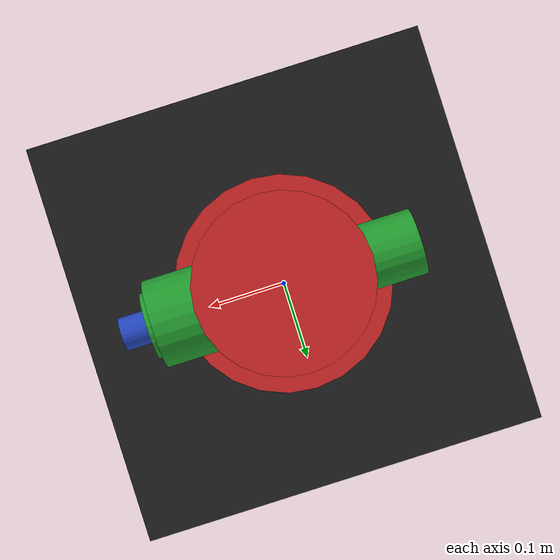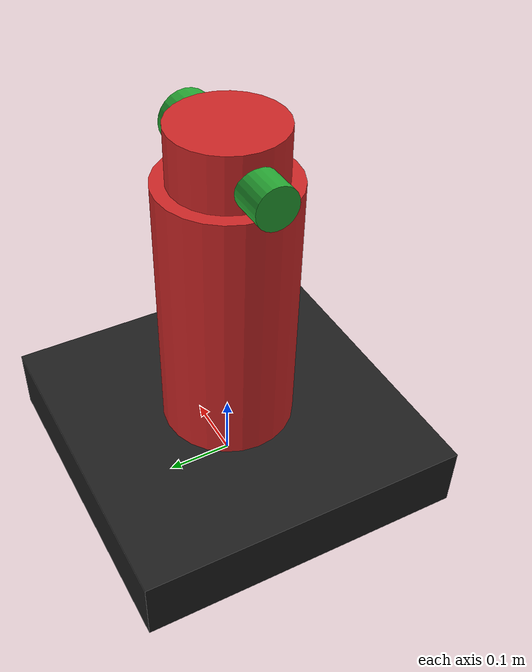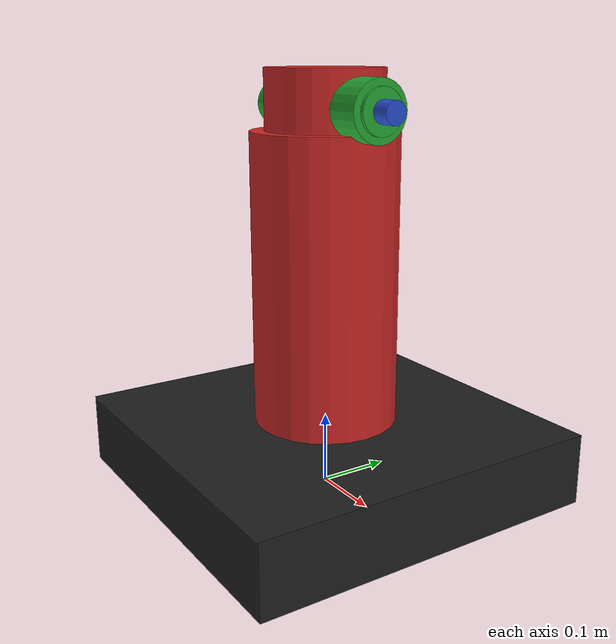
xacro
<?xml version='1.0'?>
<robot name="robot_ipsa" xmlns:xacro="http://www.ros.org/wiki/xacro">
  <xacro:include filename="$(find in426_desc)/xacro/material.xacro"/>
  <xacro:include filename="$(find in426_desc)/xacro/Robot_2/robot_2.gazebo"/>

  <xacro:property name="base_width" value="0.5"/>
  <xacro:property name="base_height" value="0.1"/>

  <xacro:property name="arm1_radius" value="0.1"/>
  <xacro:property name="arm1_length" value="0.4"/>

  <xacro:property name="arm2_radius" value="0.08"/>
  <xacro:property name="arm2_length" value="0.4"/>

  <xacro:property name="arm3_sub_radius" value="0.04"/>
  <xacro:property name="arm3_sub_length" value="0.05"/>

  <xacro:property name="arm3_radius" value="0.03"/>
  <xacro:property name="arm3_length" value="0.25"/>

  <xacro:property name="link_4_length" value="0.025"/>
  <xacro:property name="link_4_radius" value="0.015"/>

  <xacro:include filename="$(find in426_desc)/xacro/Robot_2/robot_2_ros2_control.xacro"/>

  <xacro:macro name="box_inertial" params="mass width height depth ox oy oz">
    <inertial>
      <mass value="${mass}"/>
      <origin xyz="${ox} ${oy} ${oz}"/>
      <inertia ixx="${mass / 12 * (height*height + depth*depth)}"
        iyy="${mass / 12 * (width*width + depth*depth)}"
        izz="${mass / 12 * (width*width + height*height)}"
        ixy="0" iyz="0" ixz="0"/>
    </inertial>
  </xacro:macro>

  <xacro:macro name="cylinder_inertial" params="mass radius length ox oy oz">
    <inertial>
      <origin xyz="${ox} ${oy} ${oz}"/>
      <mass value="${mass}"/>
      <inertia ixx="${mass*(3*radius*radius+length*length)/12}" ixy="0.0" ixz="0.0" iyy="${mass*(3*radius*radius+length*length)/12}" iyz="0.0" izz="${mass*radius*radius/2}"/>
    </inertial>
  </xacro:macro>

  <link name="world"/>
  <joint name="world_to_base" type="fixed">
    <parent link="world"/>
    <child link="base_link"/>
    <origin xyz="0 0 ${base_height/2}"/>
  </joint>

  <link name="base_link">
    <visual>
      <geometry>
        <box size="${base_width} ${base_width} ${base_height}"/>
      </geometry>
      <material name="black"/>
    </visual>
    <collision>
      <geometry>
        <box size="${base_width} ${base_width} ${base_height}"/>
      </geometry>
    </collision>
    <xacro:box_inertial mass="5" width="${base_width}" height="${base_width}" depth="${base_height}" ox="0" oy="0" oz="0"/>
  </link>

  <!-- Link 1 -->
  <link name="link_1">
    <visual>
      <origin xyz="0 0 ${arm1_length/2 + base_height/2}"/>
      <geometry>
        <cylinder radius="${arm1_radius}" length="${arm1_length}"/>
      </geometry>
      <material name="red"/>
    </visual>
    <collision>
      <origin xyz="0 0 ${arm1_length/2 + base_height/2}"/>
      <geometry>
        <cylinder radius="${arm1_radius}" length="${arm1_length}"/>
      </geometry>
    </collision>
    <xacro:cylinder_inertial mass="0.5" radius="${arm1_radius}" length="${arm1_length}" ox="0" oy="0" oz="${arm1_length/2 + base_height/2}"/>
  </link>
  <joint name="base_link_to_1" type="revolute">
    <parent link="base_link"/>
    <child link="link_1"/>
    <axis xyz="0 0 1"/>
    <dynamics damping="0.7"/>
    <limit effort="100" lower="${-pi/2}" upper="${pi/2}" velocity="1.0"/>
  </joint>

  <!-- Link 2 -->
  <link name="link_2">
    <visual>
      <origin xyz="0 0 ${-arm2_length/2+0.05}"/>
      <geometry>
        <cylinder radius="${arm2_radius}" length="${arm2_length}"/>
      </geometry>
      <material name="red"/>
    </visual>
    <collision>
      <origin xyz="0 0 ${-arm2_length/2+0.05}"/>
      <geometry>
        <cylinder radius="${arm2_radius}" length="${arm2_length}"/>
      </geometry>
    </collision>
    <xacro:cylinder_inertial mass="0.3" radius="${arm2_radius}" length="${arm2_length}" ox="0" oy="0" oz="${-arm2_length/2+0.05}"/>
  </link>
  <joint name="1_to_2" type="prismatic">
    <parent link="link_1"/>
    <child link="link_2"/>
    <origin xyz="0 0 ${arm1_length + 2*arm3_sub_radius}" rpy="0 0 ${-pi/2}"/>
    <axis xyz="0 0 1"/>
    <dynamics damping="0.7"/>
    <limit effort="1000" lower="0" upper="0.3" velocity="1.0"/>
  </joint>

  <!-- Link 3 -->
  <link name="link_3_sub">
    <visual>
      <origin xyz="0 0 ${arm3_sub_length/2+0.07}"/>
      <geometry>
        <cylinder radius="${arm3_sub_radius}" length="${arm3_sub_length}"/>
      </geometry>
      <material name="green"/>
    </visual>
     <collision>
      <origin xyz="0 0 ${arm3_sub_length/2+0.07}"/>
      <geometry>
        <cylinder radius="${arm3_sub_radius}" length="${arm3_sub_length}"/>
      </geometry>
    </collision>
  </link>
  <joint name="2_to_3_sub" type="fixed">
    <parent link="link_2"/>
    <child link="link_3_sub"/>
    <origin rpy="${-pi/2} 0 0"/>
  </joint>

  <link name="link_3">
    <visual>
      <geometry>
        <cylinder radius="${arm3_radius}" length="${arm3_length}"/>
      </geometry>
      <material name="green"/>
    </visual>
    <collision>
      <geometry>
        <cylinder radius="${arm3_radius}" length="${arm3_length}"/>
      </geometry>
    </collision>
    <xacro:cylinder_inertial mass="0.2" radius="${arm3_radius}" length="${arm3_length}" ox="0" oy="0" oz="0"/>
  </link>
  <joint name="2_to_3" type="prismatic">
    <parent link="link_2"/>
    <child link="link_3"/>
    <origin rpy="${-pi/2} 0 0"/>
    <axis xyz="0 0 1"/>
    <dynamics damping="0.7"/>
    <limit effort="100" lower="0" upper="${arm3_length/2 + 0.1}" velocity="1.0"/>
  </joint>

  <!-- End effector -->
  <link name="link_4">
		<visual>
			<origin xyz="0 0 ${-link_4_length/2}" rpy="0 0 0"/>
			<geometry>
				<cylinder radius="${link_4_radius}" length="${link_4_length}"/>
			</geometry>
			<material name="blue"/>
		</visual>
	</link>
	<joint name="3_to_4" type="fixed">
		<parent link="link_3"/>
		<child link="link_4"/>
		<origin xyz="0 0 ${arm3_length/2 + link_4_length}"/>
	</joint>
</robot>
